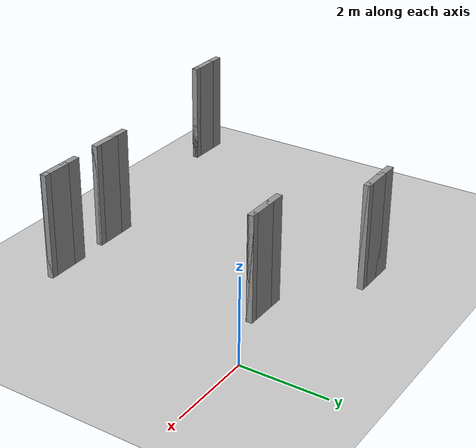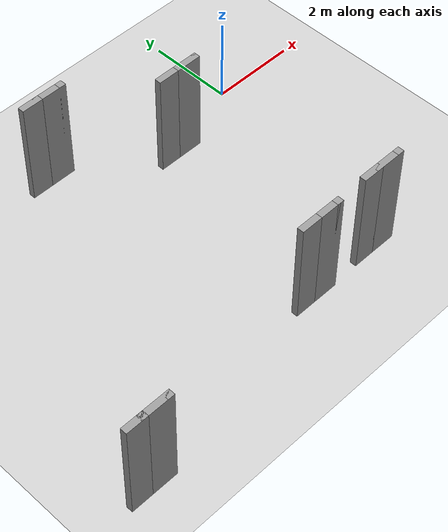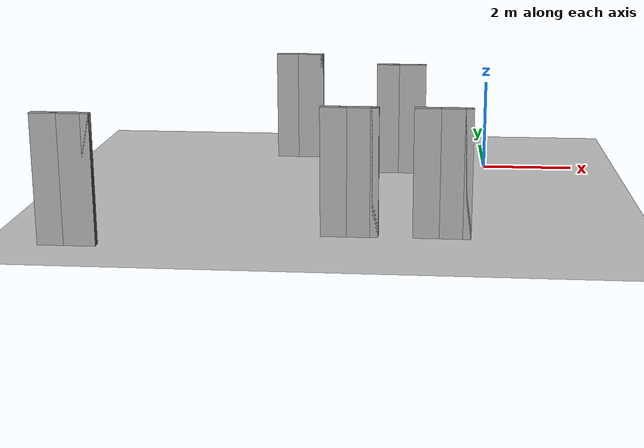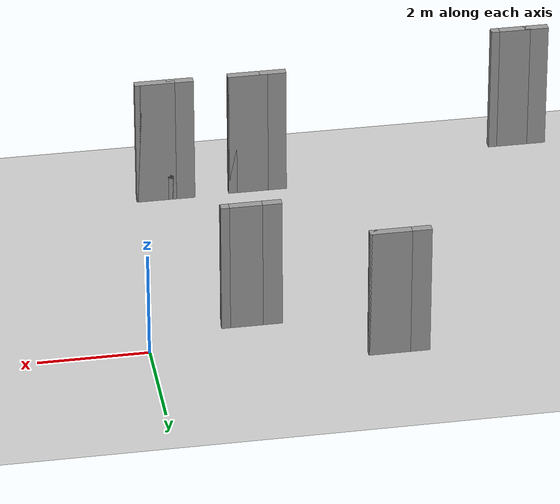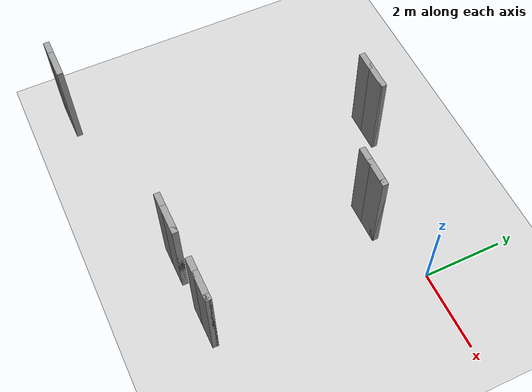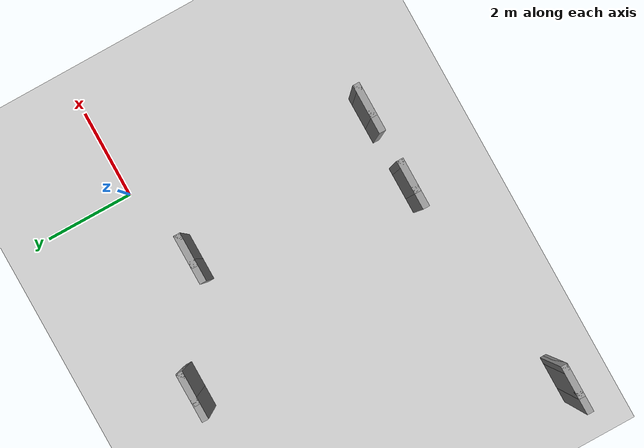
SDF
<sdf version="1.7">
 <world name="default">
  <model name="ground_plane">
   <static>1</static>
   <link name="link">
    <collision name="collision">
     <geometry><plane><normal>0 0 1</normal><size>100 100</size></plane></geometry>
     <surface><friction><ode><mu>100</mu><mu2>50</mu2></ode></friction></surface>
    </collision>
    <visual name="visual">
     <cast_shadows>0</cast_shadows>
     <geometry><plane><normal>0 0 1</normal><size>100 100</size></plane></geometry>
     <material>
      <script><uri>file://media/materials/scripts/gazebo.material</uri><name>Gazebo/Grey</name></script>
     </material>
    </visual>
   </link>
  </model>
  <model name="block_clone">
   <pose>-1.76168 0.179885 0 0 -0 0</pose>
   <link name="Wall_0">
    <collision name="Wall_0_Collision">
     <geometry><box><size>0.16 0.15 2.5</size></box></geometry>
     <pose>0 0 1.25 0 -0 0</pose>
    </collision>
    <visual name="Wall_0_Visual">
     <pose>0 0 1.25 0 -0 0</pose>
     <geometry><box><size>0.16 0.15 2.5</size></box></geometry>
     <material>
      <script><uri>file://media/materials/scripts/gazebo.material</uri><name>Gazebo/Grey</name></script>
      <ambient>1 1 1 1</ambient>
     </material>
     <meta><layer>0</layer></meta>
    </visual>
    <pose>0.3025 -0.8175 0 0 -0 0</pose>
   </link>
   <link name="Wall_1">
    <collision name="Wall_1_Collision">
     <geometry><box><size>0.75 0.15 2.5</size></box></geometry>
     <pose>0 0 1.25 0 -0 0</pose>
    </collision>
    <visual name="Wall_1_Visual">
     <pose>0 0 1.25 0 -0 0</pose>
     <geometry><box><size>0.75 0.15 2.5</size></box></geometry>
     <material>
      <script><uri>file://media/materials/scripts/gazebo.material</uri><name>Gazebo/Grey</name></script>
      <ambient>1 1 1 1</ambient>
     </material>
     <meta><layer>0</layer></meta>
    </visual>
    <pose>0.0075 -0.8175 0 0 -0 3.14159</pose>
   </link>
   <link name="Wall_2">
    <collision name="Wall_2_Collision">
     <geometry><box><size>0.5 0.15 2.5</size></box></geometry>
     <pose>0 0 1.25 0 -0 0</pose>
    </collision>
    <visual name="Wall_2_Visual">
     <pose>0 0 1.25 0 -0 0</pose>
     <geometry><box><size>0.5 0.15 2.5</size></box></geometry>
     <material>
      <script><uri>file://media/materials/scripts/gazebo.material</uri><name>Gazebo/Grey</name></script>
      <ambient>1 1 1 1</ambient>
     </material>
     <meta><layer>0</layer></meta>
    </visual>
    <pose>-0.4675 -0.8175 0 0 -0 3.14159</pose>
   </link>
   <static>1</static>
  </model>
  <model name="block_clone_1">
   <pose>-4.19496 1.47978 0 0 -0 0</pose>
   <link name="Wall_0">
    <collision name="Wall_0_Collision">
     <geometry><box><size>0.16 0.15 2.5</size></box></geometry>
     <pose>0 0 1.25 0 -0 0</pose>
    </collision>
    <visual name="Wall_0_Visual">
     <pose>0 0 1.25 0 -0 0</pose>
     <geometry><box><size>0.16 0.15 2.5</size></box></geometry>
     <material>
      <script><uri>file://media/materials/scripts/gazebo.material</uri><name>Gazebo/Grey</name></script>
      <ambient>1 1 1 1</ambient>
     </material>
     <meta><layer>0</layer></meta>
    </visual>
    <pose>0.3025 -0.8175 0 0 -0 0</pose>
   </link>
   <link name="Wall_1">
    <collision name="Wall_1_Collision">
     <geometry><box><size>0.75 0.15 2.5</size></box></geometry>
     <pose>0 0 1.25 0 -0 0</pose>
    </collision>
    <visual name="Wall_1_Visual">
     <pose>0 0 1.25 0 -0 0</pose>
     <geometry><box><size>0.75 0.15 2.5</size></box></geometry>
     <material>
      <script><uri>file://media/materials/scripts/gazebo.material</uri><name>Gazebo/Grey</name></script>
      <ambient>1 1 1 1</ambient>
     </material>
     <meta><layer>0</layer></meta>
    </visual>
    <pose>0.0075 -0.8175 0 0 -0 3.14159</pose>
   </link>
   <link name="Wall_2">
    <collision name="Wall_2_Collision">
     <geometry><box><size>0.5 0.15 2.5</size></box></geometry>
     <pose>0 0 1.25 0 -0 0</pose>
    </collision>
    <visual name="Wall_2_Visual">
     <pose>0 0 1.25 0 -0 0</pose>
     <geometry><box><size>0.5 0.15 2.5</size></box></geometry>
     <material>
      <script><uri>file://media/materials/scripts/gazebo.material</uri><name>Gazebo/Grey</name></script>
      <ambient>1 1 1 1</ambient>
     </material>
     <meta><layer>0</layer></meta>
    </visual>
    <pose>-0.4675 -0.8175 0 0 -0 3.14159</pose>
   </link>
   <static>1</static>
  </model>
  <model name="block_clone_6">
   <pose>-0.871533 -4.41162 0 0 -0 0</pose>
   <link name="Wall_0">
    <collision name="Wall_0_Collision">
     <geometry><box><size>0.16 0.15 2.5</size></box></geometry>
     <pose>0 0 1.25 0 -0 0</pose>
    </collision>
    <visual name="Wall_0_Visual">
     <pose>0 0 1.25 0 -0 0</pose>
     <geometry><box><size>0.16 0.15 2.5</size></box></geometry>
     <material>
      <script><uri>file://media/materials/scripts/gazebo.material</uri><name>Gazebo/Grey</name></script>
      <ambient>1 1 1 1</ambient>
     </material>
     <meta><layer>0</layer></meta>
    </visual>
    <pose>0.3025 -0.8175 0 0 -0 0</pose>
   </link>
   <link name="Wall_1">
    <collision name="Wall_1_Collision">
     <geometry><box><size>0.75 0.15 2.5</size></box></geometry>
     <pose>0 0 1.25 0 -0 0</pose>
    </collision>
    <visual name="Wall_1_Visual">
     <pose>0 0 1.25 0 -0 0</pose>
     <geometry><box><size>0.75 0.15 2.5</size></box></geometry>
     <material>
      <script><uri>file://media/materials/scripts/gazebo.material</uri><name>Gazebo/Grey</name></script>
      <ambient>1 1 1 1</ambient>
     </material>
     <meta><layer>0</layer></meta>
    </visual>
    <pose>0.0075 -0.8175 0 0 -0 3.14159</pose>
   </link>
   <link name="Wall_2">
    <collision name="Wall_2_Collision">
     <geometry><box><size>0.5 0.15 2.5</size></box></geometry>
     <pose>0 0 1.25 0 -0 0</pose>
    </collision>
    <visual name="Wall_2_Visual">
     <pose>0 0 1.25 0 -0 0</pose>
     <geometry><box><size>0.5 0.15 2.5</size></box></geometry>
     <material>
      <script><uri>file://media/materials/scripts/gazebo.material</uri><name>Gazebo/Grey</name></script>
      <ambient>1 1 1 1</ambient>
     </material>
     <meta><layer>0</layer></meta>
    </visual>
    <pose>-0.4675 -0.8175 0 0 -0 3.14159</pose>
   </link>
   <static>1</static>
  </model>
  <model name="block_clone_7">
   <pose>-2.61732 -4.44246 0 0 -0 0</pose>
   <link name="Wall_0">
    <collision name="Wall_0_Collision">
     <geometry><box><size>0.16 0.15 2.5</size></box></geometry>
     <pose>0 0 1.25 0 -0 0</pose>
    </collision>
    <visual name="Wall_0_Visual">
     <pose>0 0 1.25 0 -0 0</pose>
     <geometry><box><size>0.16 0.15 2.5</size></box></geometry>
     <material>
      <script><uri>file://media/materials/scripts/gazebo.material</uri><name>Gazebo/Grey</name></script>
      <ambient>1 1 1 1</ambient>
     </material>
     <meta><layer>0</layer></meta>
    </visual>
    <pose>0.3025 -0.8175 0 0 -0 0</pose>
   </link>
   <link name="Wall_1">
    <collision name="Wall_1_Collision">
     <geometry><box><size>0.75 0.15 2.5</size></box></geometry>
     <pose>0 0 1.25 0 -0 0</pose>
    </collision>
    <visual name="Wall_1_Visual">
     <pose>0 0 1.25 0 -0 0</pose>
     <geometry><box><size>0.75 0.15 2.5</size></box></geometry>
     <material>
      <script><uri>file://media/materials/scripts/gazebo.material</uri><name>Gazebo/Grey</name></script>
      <ambient>1 1 1 1</ambient>
     </material>
     <meta><layer>0</layer></meta>
    </visual>
    <pose>0.0075 -0.8175 0 0 -0 3.14159</pose>
   </link>
   <link name="Wall_2">
    <collision name="Wall_2_Collision">
     <geometry><box><size>0.5 0.15 2.5</size></box></geometry>
     <pose>0 0 1.25 0 -0 0</pose>
    </collision>
    <visual name="Wall_2_Visual">
     <pose>0 0 1.25 0 -0 0</pose>
     <geometry><box><size>0.5 0.15 2.5</size></box></geometry>
     <material>
      <script><uri>file://media/materials/scripts/gazebo.material</uri><name>Gazebo/Grey</name></script>
      <ambient>1 1 1 1</ambient>
     </material>
     <meta><layer>0</layer></meta>
    </visual>
    <pose>-0.4675 -0.8175 0 0 -0 3.14159</pose>
   </link>
   <static>1</static>
  </model>
  <model name="block_clone_9">
   <pose>-7.79285 -5.31592 0 0 -0 0</pose>
   <link name="Wall_0">
    <collision name="Wall_0_Collision">
     <geometry><box><size>0.16 0.15 2.5</size></box></geometry>
     <pose>0 0 1.25 0 -0 0</pose>
    </collision>
    <visual name="Wall_0_Visual">
     <pose>0 0 1.25 0 -0 0</pose>
     <geometry><box><size>0.16 0.15 2.5</size></box></geometry>
     <material>
      <script><uri>file://media/materials/scripts/gazebo.material</uri><name>Gazebo/Grey</name></script>
      <ambient>1 1 1 1</ambient>
     </material>
     <meta><layer>0</layer></meta>
    </visual>
    <pose>0.3025 -0.8175 0 0 -0 0</pose>
   </link>
   <link name="Wall_1">
    <collision name="Wall_1_Collision">
     <geometry><box><size>0.75 0.15 2.5</size></box></geometry>
     <pose>0 0 1.25 0 -0 0</pose>
    </collision>
    <visual name="Wall_1_Visual">
     <pose>0 0 1.25 0 -0 0</pose>
     <geometry><box><size>0.75 0.15 2.5</size></box></geometry>
     <material>
      <script><uri>file://media/materials/scripts/gazebo.material</uri><name>Gazebo/Grey</name></script>
      <ambient>1 1 1 1</ambient>
     </material>
     <meta><layer>0</layer></meta>
    </visual>
    <pose>0.0075 -0.8175 0 0 -0 3.14159</pose>
   </link>
   <link name="Wall_2">
    <collision name="Wall_2_Collision">
     <geometry><box><size>0.5 0.15 2.5</size></box></geometry>
     <pose>0 0 1.25 0 -0 0</pose>
    </collision>
    <visual name="Wall_2_Visual">
     <pose>0 0 1.25 0 -0 0</pose>
     <geometry><box><size>0.5 0.15 2.5</size></box></geometry>
     <material>
      <script><uri>file://media/materials/scripts/gazebo.material</uri><name>Gazebo/Grey</name></script>
      <ambient>1 1 1 1</ambient>
     </material>
     <meta><layer>0</layer></meta>
    </visual>
    <pose>-0.4675 -0.8175 0 0 -0 3.14159</pose>
   </link>
   <static>1</static>
  </model>
 </world>
</sdf>
